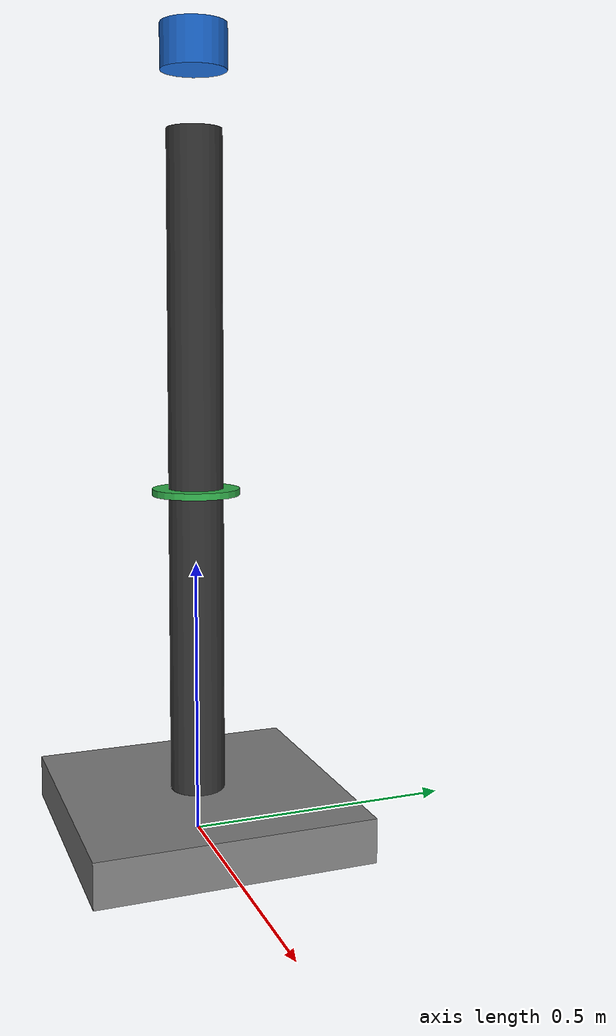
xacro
<?xml version="1.0"?>
<robot xmlns:xacro="http://www.ros.org/wiki/xacro" name="prop_test_rig">

  <!-- =========================
       可调参数
  ========================== -->
  <xacro:property name="stand_height"   value="1.2"/>     <!-- 立柱高 -->
  <xacro:property name="base_size_xy"   value="0.5"/>     <!-- 底座方形边长 -->
  <xacro:property name="base_thick"     value="0.08"/>
  <xacro:property name="stand_radius"   value="0.05"/>    <!-- 立柱半径 -->
  <xacro:property name="rod_length"     value="0.6"/>     <!-- 测试杆长度 -->
  <xacro:property name="rod_radius"     value="0.015"/>   <!-- 测试杆半径 -->
  <xacro:property name="mount_radius"   value="0.08"/>    <!-- 挂载盘半径 -->
  <xacro:property name="mount_thick"    value="0.012"/>   <!-- 挂载盘厚度 -->

  <!-- 运动范围（沿Z）与默认初始位姿 -->
  <xacro:property name="rod_z_min" value="-0.4"/>
  <xacro:property name="rod_z_max" value="0.4"/>
  <xacro:property name="rod_z_0"   value="0.0"/>

  <!-- 简易材料与惯性工具 -->
  <xacro:macro name="inertial_box" params="mass x y z">
    <inertial>
      <origin xyz="0 0 0" rpy="0 0 0"/>
      <mass value="${mass}"/>
      <inertia ixx="${mass*(y*y+z*z)/12.0}"
               iyy="${mass*(x*x+z*z)/12.0}"
               izz="${mass*(x*x+y*y)/12.0}"
               ixy="0" ixz="0" iyz="0"/>
    </inertial>
  </xacro:macro>

  <xacro:macro name="inertial_cyl" params="mass r h">
    <inertial>
      <origin xyz="0 0 0" rpy="0 0 0"/>
      <mass value="${mass}"/>
      <inertia ixx="${mass*(3*r*r+h*h)/12.0}"
               iyy="${mass*(3*r*r+h*h)/12.0}"
               izz="${mass*(r*r)/2.0}"
               ixy="0" ixz="0" iyz="0"/>
    </inertial>
  </xacro:macro>

  <!-- =========================
       Gazebo 全局设置
       将模型设为静态：底座固定在地面
  ========================== -->

  <!-- 载入 ros_control 以便速度控制棱柱关节 -->
  <gazebo>
    <plugin name="gazebo_ros_control" filename="libgazebo_ros_control.so"/>
  </gazebo>

  <!-- =========================
       底座（放在地面上）
  ========================== -->
  <link name="base_link">
    <visual>
      <origin xyz="0 0 ${base_thick/2.0}" rpy="0 0 0"/>
      <geometry>
        <box size="${base_size_xy} ${base_size_xy} ${base_thick}"/>
      </geometry>
      <material name="Gray">
        <color rgba="0.5 0.5 0.5 1"/>
      </material>
    </visual>
    <collision>
      <origin xyz="0 0 ${base_thick/2.0}" rpy="0 0 0"/>
      <geometry>
        <box size="${base_size_xy} ${base_size_xy} ${base_thick}"/>
      </geometry>
    </collision>
    <xacro:inertial_box mass="15.0" x="${base_size_xy}" y="${base_size_xy}" z="${base_thick}"/>
  </link>

  <!-- 立柱（固定于底座） -->
  <link name="stand_link">
    <visual>
      <origin xyz="0 0 ${base_thick + stand_height/2.0}" rpy="0 0 0"/>
      <geometry>
        <cylinder radius="${stand_radius}" length="${stand_height}"/>
      </geometry>
      <material name="Dark">
        <color rgba="0.2 0.2 0.2 1"/>
      </material>
    </visual>
    <collision>
      <origin xyz="0 0 ${base_thick + stand_height/2.0}" rpy="0 0 0"/>
      <geometry>
        <cylinder radius="${stand_radius}" length="${stand_height}"/>
      </geometry>
    </collision>
    <xacro:inertial_cyl mass="5.0" r="${stand_radius}" h="${stand_height}"/>
  </link>

  <joint name="base_to_stand" type="fixed">
    <parent link="base_link"/>
    <child  link="stand_link"/>
  </joint>

  <!-- =========================
       竖直滑块（Z向棱柱关节）
  ========================== -->
  <link name="slider_link">
    <!-- 可视化一个小套筒，便于观察 -->
    <visual>
      <origin xyz="0 0 ${base_thick + 0.1}" rpy="0 0 0"/>
      <geometry>
        <cylinder radius="${stand_radius*1.2}" length="0.08"/>
      </geometry>
      <material name="Blue">
        <color rgba="0.1 0.4 0.8 1"/>
      </material>
    </visual>
    <collision>
      <origin xyz="0 0 ${base_thick + 0.1}" rpy="0 0 0"/>
      <geometry>
        <cylinder radius="${stand_radius*1.2}" length="0.08"/>
      </geometry>
    </collision>
    <xacro:inertial_cyl mass="1.0" r="${stand_radius*1.2}" h="0.08"/>
  </link>

  <joint name="rod_slide" type="prismatic">
    <parent link="stand_link"/>
    <child  link="slider_link"/>
    <!-- 关节坐标系放在立柱顶部附近，轴向 +Z -->
    <origin xyz="0 0 ${base_thick + stand_height - 0.04}" rpy="0 0 0"/>
    <axis xyz="0 0 1"/>
    <limit lower="${rod_z_min}" upper="${rod_z_max}" effort="500" velocity="1.0"/>
    <dynamics damping="5.0" friction="0.1"/>
  </joint>

  <!-- =========================
       测试杆（与滑块刚性连接）
  ========================== -->
  <link name="rod_link">
    <visual>
      <origin xyz="0 0 ${-rod_length/2.0}" rpy="0 0 0"/>
      <geometry>
        <cylinder radius="${rod_radius}" length="${rod_length}"/>
      </geometry>
      <material name="Orange">
        <color rgba="0.95 0.5 0.2 1"/>
      </material>
    </visual>
    <collision>
      <origin xyz="0 0 ${-rod_length/2.0}" rpy="0 0 0"/>
      <geometry>
        <cylinder radius="${rod_radius}" length="${rod_length}"/>
      </geometry>
    </collision>
    <xacro:inertial_cyl mass="0.5" r="${rod_radius}" h="${rod_length}"/>
  </link>

  <joint name="slider_to_rod" type="fixed">
    <parent link="slider_link"/>
    <!-- 将杆的上端与滑块对齐，使杆向下延伸 -->
    <child  link="rod_link"/>
    <origin xyz="0 0 0" rpy="0 0 0"/>
  </joint>

  <!-- =========================
       挂载盘（在杆底端），用于安装桨叶/机体
  ========================== -->
  <link name="mount_link">
    <visual>
      <origin xyz="0 0 ${-rod_length - mount_thick/2.0}" rpy="0 0 0"/>
      <geometry>
        <cylinder radius="${mount_radius}" length="${mount_thick}"/>
      </geometry>
      <material name="Green">
        <color rgba="0.2 0.7 0.3 1"/>
      </material>
    </visual>
    <collision>
      <origin xyz="0 0 ${-rod_length - mount_thick/2.0}" rpy="0 0 0"/>
      <geometry>
        <cylinder radius="${mount_radius}" length="${mount_thick}"/>
      </geometry>
    </collision>
    <xacro:inertial_cyl mass="0.4" r="${mount_radius}" h="${mount_thick}"/>
  </link>

  <joint name="rod_to_mount" type="fixed">
    <parent link="rod_link"/>
    <child  link="mount_link"/>
    <origin xyz="0 0 0" rpy="0 0 0"/>
  </joint>

  <!-- =========================
       ros_control 传动（速度接口）
       你可以启一个 VelocityJointController 来设定杆的恒速
  ========================== -->
  <transmission name="rod_slide_trans">
    <type>transmission_interface/SimpleTransmission</type>
    <joint name="rod_slide">
      <hardwareInterface>hardware_interface/VelocityJointInterface</hardwareInterface>
    </joint>
    <actuator name="rod_actuator">
      <hardwareInterface>hardware_interface/VelocityJointInterface</hardwareInterface>
      <mechanicalReduction>1.0</mechanicalReduction>
    </actuator>
  </transmission>
<!-- 冻结底座，但整机仍是动态模型 -->
<!-- === 1. 定义一个关闭重力的宏 === -->
<xacro:macro name="no_gravity" params="ln">
  <gazebo reference="${ln}">
    <gravity>false</gravity>
  </gazebo>
</xacro:macro>

<!-- === 2. 对 rig 里所有 link 调用一次 === -->
<xacro:no_gravity ln="base_link"/>
<xacro:no_gravity ln="stand_link"/>
<xacro:no_gravity ln="slider_link"/>
<xacro:no_gravity ln="rod_link"/>
<xacro:no_gravity ln="mount_link"/>

  <!-- =========================
       （可选）在此处挂你的流体/波浪等插件
       示例：将插件挂在模型上或 mount_link 上读取力、阻力、相位等
       使用前请根据你的 .so 名称调整 filename
  ========================== -->

  <!-- 挂在整个模型（推荐） -->

  <!-- 或者仅挂在挂载盘上 -->

</robot>
